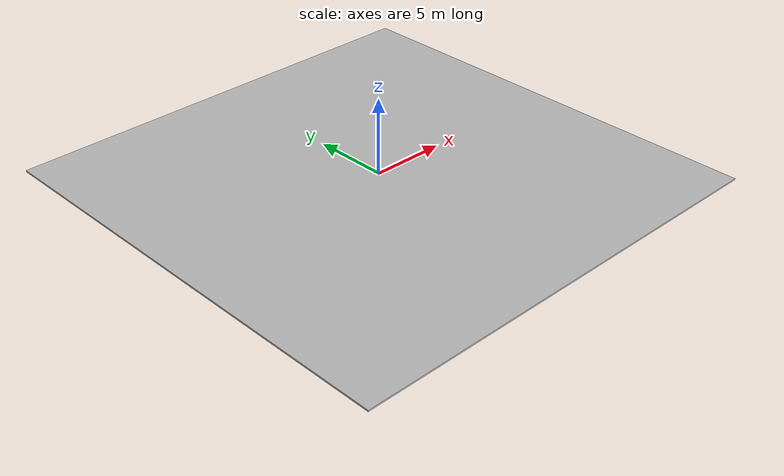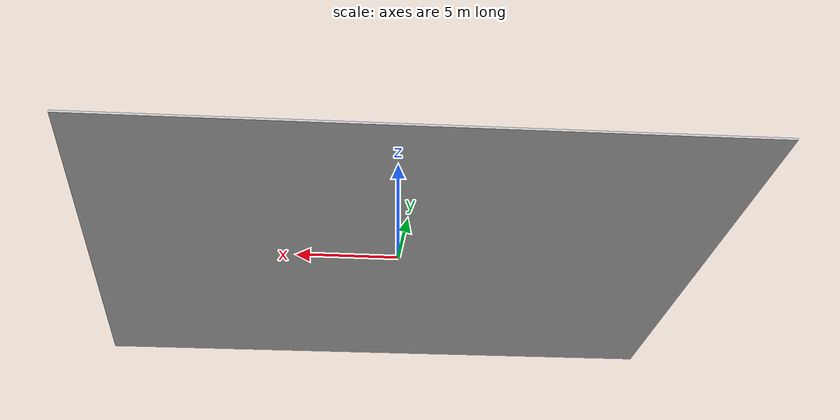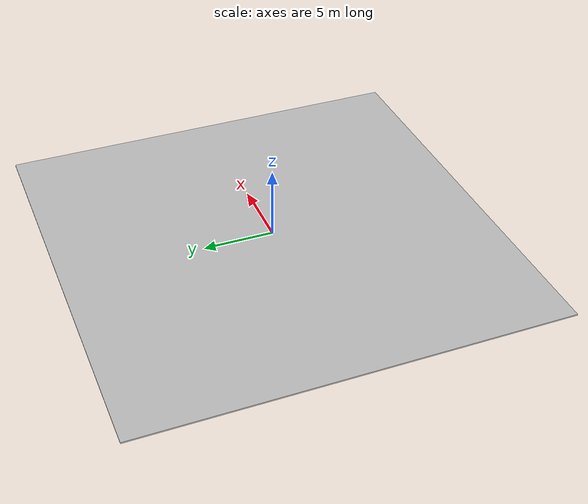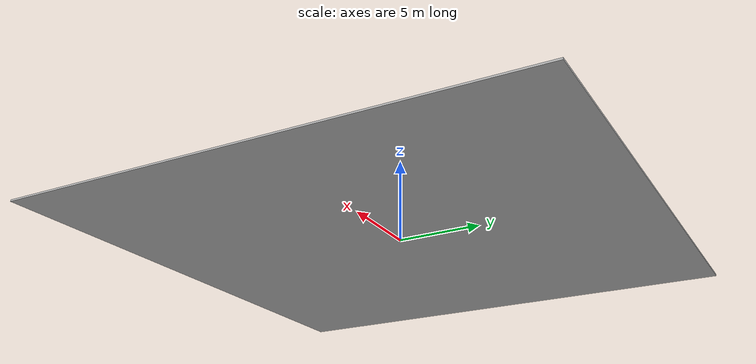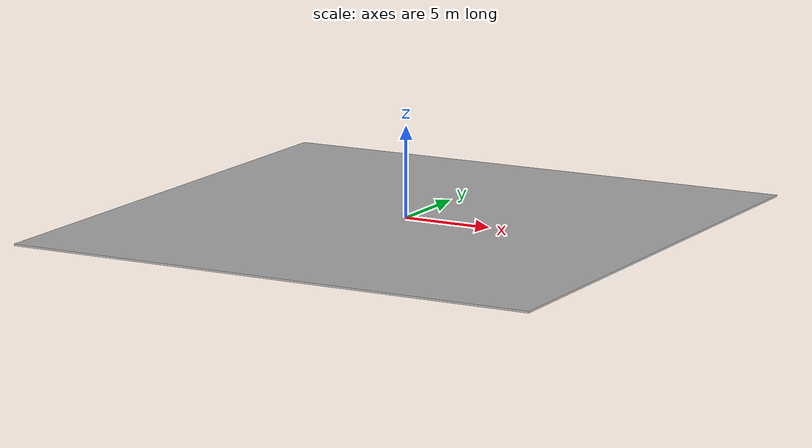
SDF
<?xml version="1.0" ?>
<sdf version="1.7">
  <model name="laberint_ground">
      <pose>0.0 0.0 -0.1 0 0 0</pose>
      <static>1</static>
      <link name="laberint_ground_link">
        <collision name="ground_coll">
          <geometry>
            <box>
              <size>50 50 0.1</size>
            </box>
          </geometry>
          <surface>
            <contact>
              <ode/>
            </contact>
          </surface>
        </collision>
        <visual name="ground_vis">
          <geometry>
            <box>
              <size>30 30 .1</size>
            </box>
          </geometry>
          <material>
            <script>
              <uri>file://laberint_ground/materials/scripts</uri>
              <uri>file://laberint_ground/materials/textures</uri>
              <name>laberint_ground</name>
            </script>
          </material>
        </visual>
      </link>
    </model>
</sdf>
